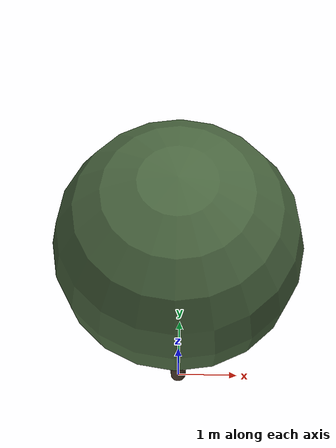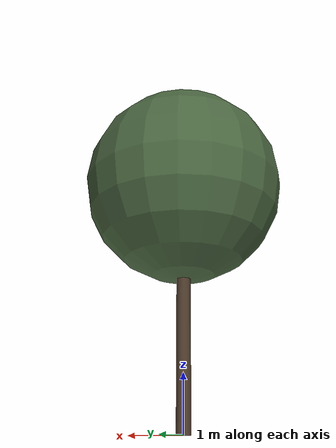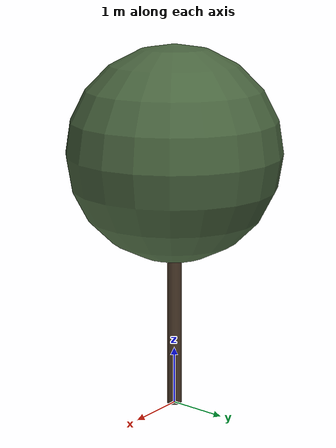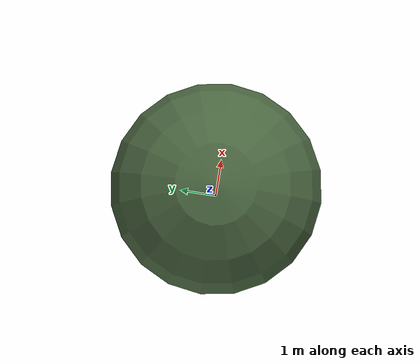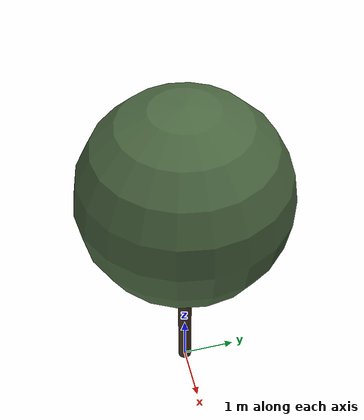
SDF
<?xml version="1.0" ?>
<sdf version="1.10">
  <model name="chene_vert_24">
    <static>true</static>

    <!-- Tronc -->
    <link name="trunk">
      <pose>0 0 1.9361604380558073 0 0 0</pose>
      <visual name="trunk_visual">
        <geometry>
          <cylinder>
            <radius>0.12577258979204378</radius>
            <length>3.8723208761116146</length>
          </cylinder>
        </geometry>
        <material>
          <ambient>0.29 0.22 0.16 1</ambient>
          <diffuse>0.29 0.22 0.16 1</diffuse>
          <specular>0.1 0.1 0.1 1</specular>
        </material>
      </visual>
      <collision name="trunk_collision">
        <geometry>
          <cylinder>
            <radius>0.12577258979204378</radius>
            <length>3.8723208761116146</length>
          </cylinder>
        </geometry>
      </collision>
    </link>

    <!-- Feuillage -->
    <link name="crown">
      <pose>0 0 4.415144304753293 0 0 0</pose>
      <visual name="crown_visual">
        <geometry>
          <sphere>
              <radius>1.809411428805595</radius>
            </sphere>
        </geometry>
        <material>
          <ambient>0.29 0.40 0.25 1</ambient>
          <diffuse>0.29 0.40 0.25 1</diffuse>
          <specular>0.1 0.1 0.1 1</specular>
        </material>
      </visual>
      <collision name="crown_collision">
        <geometry>
          <sphere>
            <radius>1.447529143044476</radius>
          </sphere>
        </geometry>
      </collision>
    </link>

    <!-- Joint tronc-feuillage -->
    <joint name="trunk_crown_joint" type="fixed">
      <parent>trunk</parent>
      <child>crown</child>
    </joint>

  </model>
</sdf>
